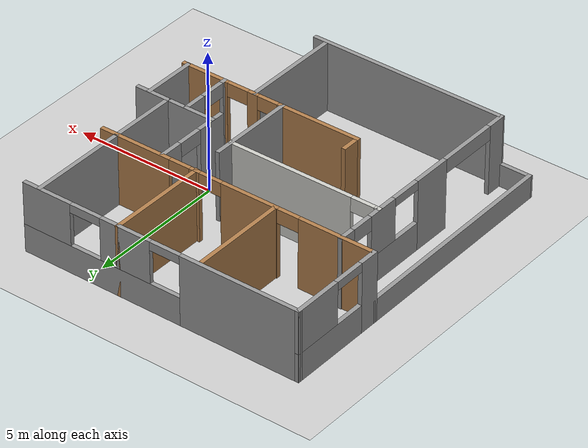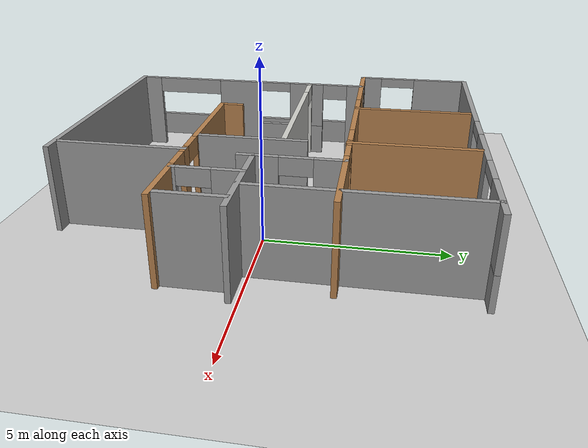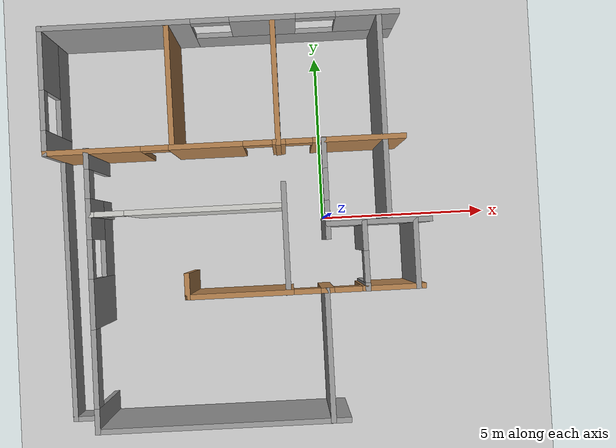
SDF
<sdf version="1.7">
 <world name="default">
  <scene><ambient>0.4 0.4 0.4 1</ambient><background>0.7 0.7 0.7 1</background><shadows>1</shadows></scene>
  <light name="sun" type="directional">
   <pose>0 0 10 0 -0 0</pose>
   <diffuse>0.8 0.8 0.8 1</diffuse>
   <specular>0.2 0.2 0.2 1</specular>
   <attenuation>
    <range>1000</range>
    <constant>0.9</constant>
    <linear>0.01</linear>
    <quadratic>0.001</quadratic>
   </attenuation>
   <direction>-0.5 0.1 -0.9</direction>
   <spot><inner_angle>0</inner_angle><outer_angle>0</outer_angle><falloff>0</falloff></spot>
  </light>
  <model name="ground_plane">
   <static>1</static>
   <link name="link">
    <collision name="collision">
     <geometry><plane><normal>0 0 1</normal><size>100 100</size></plane></geometry>
     <surface><friction><ode><mu>100</mu><mu2>50</mu2></ode></friction></surface>
    </collision>
    <visual name="visual">
     <cast_shadows>0</cast_shadows>
     <geometry><plane><normal>0 0 1</normal><size>100 100</size></plane></geometry>
     <material>
      <script><uri>file://media/materials/scripts/gazebo.material</uri><name>Gazebo/Grey</name></script>
     </material>
    </visual>
   </link>
  </model>
  <physics type="ode">
   <real_time_update_rate>1000</real_time_update_rate>
   <max_step_size>0.001</max_step_size>
   <real_time_factor>1</real_time_factor>
   <ode>
    <solver>
     <type>quick</type>
     <iters>150</iters>
     <precon_iters>0</precon_iters>
     <sor>1.4</sor>
     <use_dynamic_moi_rescaling>1</use_dynamic_moi_rescaling>
    </solver>
    <constraints>
     <cfm>1e-05</cfm>
     <erp>0.2</erp>
     <contact_max_correcting_vel>2000</contact_max_correcting_vel>
     <contact_surface_layer>0.01</contact_surface_layer>
    </constraints>
   </ode>
  </physics>
  <gravity>0 0 -9.8</gravity>
  <magnetic_field>6e-06 2.3e-05 -4.2e-05</magnetic_field>
  <atmosphere type="adiabatic"/>
  <spherical_coordinates>
   <surface_model>EARTH_WGS84</surface_model>
   <latitude_deg>0</latitude_deg>
   <longitude_deg>0</longitude_deg>
   <elevation>0</elevation>
   <heading_deg>0</heading_deg>
  </spherical_coordinates>
  <model name="psr_appartment">
   <pose>-2.46745 -0.010353 0 0 -0 0</pose>
   <link name="Wall_11">
    <pose>-0.304378 5.68028 0 0 -0 0</pose>
    <visual name="Wall_11_Visual_0">
     <pose>-2.95563 0 1.25 0 -0 0</pose>
     <geometry><box><size>4.33874 0.15 2.5</size></box></geometry>
     <material>
      <script><uri>file://media/materials/scripts/gazebo.material</uri><name>Gazebo/Grey</name></script>
      <ambient>1 1 1 1</ambient>
     </material>
     <meta><layer>0</layer></meta>
    </visual>
    <collision name="Wall_11_Collision_0">
     <geometry><box><size>4.33874 0.15 2.5</size></box></geometry>
     <pose>-2.95563 0 1.25 0 -0 0</pose>
    </collision>
    <visual name="Wall_11_Visual_1">
     <pose>2.16937 0 0.5 0 -0 0</pose>
     <geometry><box><size>5.91126 0.15 1</size></box></geometry>
     <material>
      <script><uri>file://media/materials/scripts/gazebo.material</uri><name>Gazebo/Grey</name></script>
      <ambient>1 1 1 1</ambient>
     </material>
     <meta><layer>0</layer></meta>
    </visual>
    <collision name="Wall_11_Collision_1">
     <geometry><box><size>5.91126 0.15 1</size></box></geometry>
     <pose>2.16937 0 0.5 0 -0 0</pose>
    </collision>
    <visual name="Wall_11_Visual_2">
     <pose>1.24874 0 1.75 0 -0 0</pose>
     <geometry><box><size>1.87 0.15 1.5</size></box></geometry>
     <material>
      <script><uri>file://media/materials/scripts/gazebo.material</uri><name>Gazebo/Grey</name></script>
      <ambient>1 1 1 1</ambient>
     </material>
     <meta><layer>0</layer></meta>
    </visual>
    <collision name="Wall_11_Collision_2">
     <geometry><box><size>1.87 0.15 1.5</size></box></geometry>
     <pose>1.24874 0 1.75 0 -0 0</pose>
    </collision>
    <visual name="Wall_11_Visual_3">
     <pose>4.21937 0 1.75 0 -0 0</pose>
     <geometry><box><size>1.81126 0.15 1.5</size></box></geometry>
     <material>
      <script><uri>file://media/materials/scripts/gazebo.material</uri><name>Gazebo/Grey</name></script>
      <ambient>1 1 1 1</ambient>
     </material>
     <meta><layer>0</layer></meta>
    </visual>
    <collision name="Wall_11_Collision_3">
     <geometry><box><size>1.81126 0.15 1.5</size></box></geometry>
     <pose>4.21937 0 1.75 0 -0 0</pose>
    </collision>
    <visual name="Wall_11_Visual_4">
     <pose>-0.236258 0 2.35 0 -0 0</pose>
     <geometry><box><size>1.1 0.15 0.3</size></box></geometry>
     <material>
      <script><uri>file://media/materials/scripts/gazebo.material</uri><name>Gazebo/Grey</name></script>
      <ambient>1 1 1 1</ambient>
     </material>
     <meta><layer>0</layer></meta>
    </visual>
    <collision name="Wall_11_Collision_4">
     <geometry><box><size>1.1 0.15 0.3</size></box></geometry>
     <pose>-0.236258 0 2.35 0 -0 0</pose>
    </collision>
    <visual name="Wall_11_Visual_5">
     <pose>2.74874 0 2.35 0 -0 0</pose>
     <geometry><box><size>1.13 0.15 0.3</size></box></geometry>
     <material>
      <script><uri>file://media/materials/scripts/gazebo.material</uri><name>Gazebo/Grey</name></script>
      <ambient>1 1 1 1</ambient>
     </material>
     <meta><layer>0</layer></meta>
    </visual>
    <collision name="Wall_11_Collision_5">
     <geometry><box><size>1.13 0.15 0.3</size></box></geometry>
     <pose>2.74874 0 2.35 0 -0 0</pose>
    </collision>
   </link>
   <link name="Wall_13">
    <pose>-5.34997 3.91932 0 0 -0 1.5733</pose>
    <visual name="Wall_13_Visual_0">
     <pose>-1.47102 0 1.25 0 -0 0</pose>
     <geometry><box><size>0.73014 0.15 2.5</size></box></geometry>
     <material>
      <script><uri>file://media/materials/scripts/gazebo.material</uri><name>Gazebo/Grey</name></script>
      <ambient>1 1 1 1</ambient>
     </material>
     <meta><layer>0</layer></meta>
    </visual>
    <collision name="Wall_13_Collision_0">
     <geometry><box><size>0.73014 0.15 2.5</size></box></geometry>
     <pose>-1.47102 0 1.25 0 -0 0</pose>
    </collision>
    <visual name="Wall_13_Visual_1">
     <pose>0.36507 0 0.5 0 -0 0</pose>
     <geometry><box><size>2.94204 0.15 1</size></box></geometry>
     <material>
      <script><uri>file://media/materials/scripts/gazebo.material</uri><name>Gazebo/Grey</name></script>
      <ambient>1 1 1 1</ambient>
     </material>
     <meta><layer>0</layer></meta>
    </visual>
    <collision name="Wall_13_Collision_1">
     <geometry><box><size>2.94204 0.15 1</size></box></geometry>
     <pose>0.36507 0 0.5 0 -0 0</pose>
    </collision>
    <visual name="Wall_13_Visual_2">
     <pose>0.93507 0 1.75 0 -0 0</pose>
     <geometry><box><size>1.80204 0.15 1.5</size></box></geometry>
     <material>
      <script><uri>file://media/materials/scripts/gazebo.material</uri><name>Gazebo/Grey</name></script>
      <ambient>1 1 1 1</ambient>
     </material>
     <meta><layer>0</layer></meta>
    </visual>
    <collision name="Wall_13_Collision_2">
     <geometry><box><size>1.80204 0.15 1.5</size></box></geometry>
     <pose>0.93507 0 1.75 0 -0 0</pose>
    </collision>
    <visual name="Wall_13_Visual_3">
     <pose>-0.535949 0 2.35 0 -0 0</pose>
     <geometry><box><size>1.14 0.15 0.3</size></box></geometry>
     <material>
      <script><uri>file://media/materials/scripts/gazebo.material</uri><name>Gazebo/Grey</name></script>
      <ambient>1 1 1 1</ambient>
     </material>
     <meta><layer>0</layer></meta>
    </visual>
    <collision name="Wall_13_Collision_3">
     <geometry><box><size>1.14 0.15 0.3</size></box></geometry>
     <pose>-0.535949 0 2.35 0 -0 0</pose>
    </collision>
   </link>
   <link name="Wall_15">
    <collision name="Wall_15_Collision">
     <geometry><box><size>3.49149 0.15 2.5</size></box></geometry>
     <pose>0 0 1.25 0 -0 0</pose>
    </collision>
    <visual name="Wall_15_Visual">
     <pose>0 0 1.25 0 -0 0</pose>
     <geometry><box><size>3.49149 0.15 2.5</size></box></geometry>
     <material>
      <script><uri>file://media/materials/scripts/gazebo.material</uri><name>Gazebo/Wood</name></script>
      <ambient>1 1 1 1</ambient>
     </material>
     <meta><layer>0</layer></meta>
    </visual>
    <pose>-1.77272 3.85299 0 0 -0 1.57535</pose>
   </link>
   <link name="Wall_17">
    <collision name="Wall_17_Collision">
     <geometry><box><size>3.69364 0.15 2.5</size></box></geometry>
     <pose>0 0 1.25 0 -0 0</pose>
    </collision>
    <visual name="Wall_17_Visual">
     <pose>0 0 1.25 0 -0 0</pose>
     <geometry><box><size>3.69364 0.15 2.5</size></box></geometry>
     <material>
      <script><uri>file://media/materials/scripts/gazebo.material</uri><name>Gazebo/Wood</name></script>
      <ambient>1 1 1 1</ambient>
     </material>
     <meta><layer>0</layer></meta>
    </visual>
    <pose>1.2158 3.90846 0 0 -0 1.5708</pose>
   </link>
   <link name="Wall_19">
    <pose>2.49334 0.790666 0 0 -0 -1.5708</pose>
    <visual name="Wall_19_Visual_0">
     <pose>-1.00243 0 1.25 0 -0 0</pose>
     <geometry><box><size>0.867502 0.15 2.5</size></box></geometry>
     <material>
      <script><uri>file://media/materials/scripts/gazebo.material</uri><name>Gazebo/Grey</name></script>
      <ambient>1 1 1 1</ambient>
     </material>
     <meta><layer>0</layer></meta>
    </visual>
    <collision name="Wall_19_Collision_0">
     <geometry><box><size>0.867502 0.15 2.5</size></box></geometry>
     <pose>-1.00243 0 1.25 0 -0 0</pose>
    </collision>
    <visual name="Wall_19_Visual_1">
     <pose>0.883751 0 1.25 0 -0 0</pose>
     <geometry><box><size>1.10486 0.15 2.5</size></box></geometry>
     <material>
      <script><uri>file://media/materials/scripts/gazebo.material</uri><name>Gazebo/Grey</name></script>
      <ambient>1 1 1 1</ambient>
     </material>
     <meta><layer>0</layer></meta>
    </visual>
    <collision name="Wall_19_Collision_1">
     <geometry><box><size>1.10486 0.15 2.5</size></box></geometry>
     <pose>0.883751 0 1.25 0 -0 0</pose>
    </collision>
    <visual name="Wall_19_Visual_2">
     <pose>-0.118681 0 2.25 0 -0 0</pose>
     <geometry><box><size>0.9 0.15 0.5</size></box></geometry>
     <material>
      <script><uri>file://media/materials/scripts/gazebo.material</uri><name>Gazebo/Grey</name></script>
      <ambient>1 1 1 1</ambient>
     </material>
     <meta><layer>0</layer></meta>
    </visual>
    <collision name="Wall_19_Collision_2">
     <geometry><box><size>0.9 0.15 0.5</size></box></geometry>
     <pose>-0.118681 0 2.25 0 -0 0</pose>
    </collision>
   </link>
   <link name="Wall_2">
    <collision name="Wall_2_Collision">
     <geometry><box><size>7.14201 0.15 2.5</size></box></geometry>
     <pose>0 0 1.25 0 -0 0</pose>
    </collision>
    <visual name="Wall_2_Visual">
     <pose>0 0 1.25 0 -0 0</pose>
     <geometry><box><size>7.14201 0.15 2.5</size></box></geometry>
     <material>
      <script><uri>file://media/materials/scripts/gazebo.material</uri><name>Gazebo/Grey</name></script>
      <ambient>1 1 1 1</ambient>
     </material>
     <meta><layer>0</layer></meta>
    </visual>
    <pose>-0.692508 -5.67455 0 0 -0 -0.00169</pose>
   </link>
   <link name="Wall_21">
    <collision name="Wall_21_Collision">
     <geometry><box><size>3 0.15 2.5</size></box></geometry>
     <pose>0 0 1.25 0 -0 0</pose>
    </collision>
    <visual name="Wall_21_Visual">
     <pose>0 0 1.25 0 -0 0</pose>
     <geometry><box><size>3 0.15 2.5</size></box></geometry>
     <material>
      <script><uri>file://media/materials/scripts/gazebo.material</uri><name>Gazebo/Grey</name></script>
      <ambient>1 1 1 1</ambient>
     </material>
     <meta><layer>0</layer></meta>
    </visual>
    <pose>3.92957 -0.207491 0 0 -0 3.14159</pose>
   </link>
   <link name="Wall_24">
    <pose>1.7781 -2.06515 0 0 -0 0</pose>
    <visual name="Wall_24_Visual_0">
     <pose>-1.84862 0 1.25 0 -0 0</pose>
     <geometry><box><size>3.05276 0.15 2.5</size></box></geometry>
     <material>
      <script><uri>file://media/materials/scripts/gazebo.material</uri><name>Gazebo/Wood</name></script>
      <ambient>1 1 1 1</ambient>
     </material>
     <meta><layer>0</layer></meta>
    </visual>
    <collision name="Wall_24_Collision_0">
     <geometry><box><size>3.05276 0.15 2.5</size></box></geometry>
     <pose>-1.84862 0 1.25 0 -0 0</pose>
    </collision>
    <visual name="Wall_24_Visual_1">
     <pose>0.622094 0 1.25 0 -0 0</pose>
     <geometry><box><size>0.377977 0.15 2.5</size></box></geometry>
     <material>
      <script><uri>file://media/materials/scripts/gazebo.material</uri><name>Gazebo/Wood</name></script>
      <ambient>1 1 1 1</ambient>
     </material>
     <meta><layer>0</layer></meta>
    </visual>
    <collision name="Wall_24_Collision_1">
     <geometry><box><size>0.377977 0.15 2.5</size></box></geometry>
     <pose>0.622094 0 1.25 0 -0 0</pose>
    </collision>
    <visual name="Wall_24_Visual_2">
     <pose>2.48387 0 1.25 0 -0 0</pose>
     <geometry><box><size>1.78227 0.15 2.5</size></box></geometry>
     <material>
      <script><uri>file://media/materials/scripts/gazebo.material</uri><name>Gazebo/Wood</name></script>
      <ambient>1 1 1 1</ambient>
     </material>
     <meta><layer>0</layer></meta>
    </visual>
    <collision name="Wall_24_Collision_2">
     <geometry><box><size>1.78227 0.15 2.5</size></box></geometry>
     <pose>2.48387 0 1.25 0 -0 0</pose>
    </collision>
    <visual name="Wall_24_Visual_3">
     <pose>0.055432 0 2.25 0 -0 0</pose>
     <geometry><box><size>0.755346 0.15 0.5</size></box></geometry>
     <material>
      <script><uri>file://media/materials/scripts/gazebo.material</uri><name>Gazebo/Wood</name></script>
      <ambient>1 1 1 1</ambient>
     </material>
     <meta><layer>0</layer></meta>
    </visual>
    <collision name="Wall_24_Collision_3">
     <geometry><box><size>0.755346 0.15 0.5</size></box></geometry>
     <pose>0.055432 0 2.25 0 -0 0</pose>
    </collision>
    <visual name="Wall_24_Visual_4">
     <pose>1.20191 0 2.25 0 -0 0</pose>
     <geometry><box><size>0.781647 0.15 0.5</size></box></geometry>
     <material>
      <script><uri>file://media/materials/scripts/gazebo.material</uri><name>Gazebo/Wood</name></script>
      <ambient>1 1 1 1</ambient>
     </material>
     <meta><layer>0</layer></meta>
    </visual>
    <collision name="Wall_24_Collision_4">
     <geometry><box><size>0.781647 0.15 0.5</size></box></geometry>
     <pose>1.20191 0 2.25 0 -0 0</pose>
    </collision>
   </link>
   <link name="Wall_27">
    <collision name="Wall_27_Collision">
     <geometry><box><size>2 0.15 2.5</size></box></geometry>
     <pose>0 0 1.25 0 -0 0</pose>
    </collision>
    <visual name="Wall_27_Visual">
     <pose>0 0 1.25 0 -0 0</pose>
     <geometry><box><size>2 0.15 2.5</size></box></geometry>
     <material>
      <script><uri>file://media/materials/scripts/gazebo.material</uri><name>Gazebo/Grey</name></script>
      <ambient>1 1 1 1</ambient>
     </material>
     <meta><layer>0</layer></meta>
    </visual>
    <pose>4.94512 -1.14015 0 0 -0 1.5708</pose>
   </link>
   <link name="Wall_29">
    <pose>3.52344 -1.14601 0 0 -0 -1.5636</pose>
    <visual name="Wall_29_Visual_0">
     <pose>-0.566193 0 1.25 0 -0 0</pose>
     <geometry><box><size>0.855937 0.15 2.5</size></box></geometry>
     <material>
      <script><uri>file://media/materials/scripts/gazebo.material</uri><name>Gazebo/Grey</name></script>
      <ambient>1 1 1 1</ambient>
     </material>
     <meta><layer>0</layer></meta>
    </visual>
    <collision name="Wall_29_Collision_0">
     <geometry><box><size>0.855937 0.15 2.5</size></box></geometry>
     <pose>-0.566193 0 1.25 0 -0 0</pose>
    </collision>
    <visual name="Wall_29_Visual_1">
     <pose>0.877969 0 1.25 0 -0 0</pose>
     <geometry><box><size>0.232385 0.15 2.5</size></box></geometry>
     <material>
      <script><uri>file://media/materials/scripts/gazebo.material</uri><name>Gazebo/Grey</name></script>
      <ambient>1 1 1 1</ambient>
     </material>
     <meta><layer>0</layer></meta>
    </visual>
    <collision name="Wall_29_Collision_1">
     <geometry><box><size>0.232385 0.15 2.5</size></box></geometry>
     <pose>0.877969 0 1.25 0 -0 0</pose>
    </collision>
    <visual name="Wall_29_Visual_2">
     <pose>0.311776 0 2.25 0 -0 0</pose>
     <geometry><box><size>0.9 0.15 0.5</size></box></geometry>
     <material>
      <script><uri>file://media/materials/scripts/gazebo.material</uri><name>Gazebo/Grey</name></script>
      <ambient>1 1 1 1</ambient>
     </material>
     <meta><layer>0</layer></meta>
    </visual>
    <collision name="Wall_29_Collision_2">
     <geometry><box><size>0.9 0.15 0.5</size></box></geometry>
     <pose>0.311776 0 2.25 0 -0 0</pose>
    </collision>
   </link>
   <link name="Wall_31">
    <collision name="Wall_31_Collision">
     <geometry><box><size>3.19175 0.15 2.5</size></box></geometry>
     <pose>0 0 1.25 0 -0 0</pose>
    </collision>
    <visual name="Wall_31_Visual">
     <pose>0 0 1.25 0 -0 0</pose>
     <geometry><box><size>3.19175 0.15 2.5</size></box></geometry>
     <material>
      <script><uri>file://media/materials/scripts/gazebo.material</uri><name>Gazebo/Grey</name></script>
      <ambient>1 1 1 1</ambient>
     </material>
     <meta><layer>0</layer></meta>
    </visual>
    <pose>1.30267 -0.550631 0 0 -0 1.5708</pose>
   </link>
   <link name="Wall_34">
    <pose>-1.44379 0.379575 0 0 -0 0</pose>
    <visual name="Wall_34_Visual_0">
     <pose>-2.70164 0 1.25 0 -0 0</pose>
     <geometry><box><size>0.216714 0.15 2.5</size></box></geometry>
     <material>
      <script><uri>file://media/materials/scripts/gazebo.material</uri><name>Gazebo/CeilingTiled</name></script>
      <ambient>1 1 1 1</ambient>
     </material>
     <meta><layer>0</layer></meta>
    </visual>
    <collision name="Wall_34_Collision_0">
     <geometry><box><size>0.216714 0.15 2.5</size></box></geometry>
     <pose>-2.70164 0 1.25 0 -0 0</pose>
    </collision>
    <visual name="Wall_34_Visual_1">
     <pose>0.528187 0 1.25 0 -0 0</pose>
     <geometry><box><size>4.56363 0.15 2.5</size></box></geometry>
     <material>
      <script><uri>file://media/materials/scripts/gazebo.material</uri><name>Gazebo/CeilingTiled</name></script>
      <ambient>1 1 1 1</ambient>
     </material>
     <meta><layer>0</layer></meta>
    </visual>
    <collision name="Wall_34_Collision_1">
     <geometry><box><size>4.56363 0.15 2.5</size></box></geometry>
     <pose>0.528187 0 1.25 0 -0 0</pose>
    </collision>
    <visual name="Wall_34_Visual_2">
     <pose>-2.17346 0 2.25 0 -0 0</pose>
     <geometry><box><size>0.839659 0.15 0.5</size></box></geometry>
     <material>
      <script><uri>file://media/materials/scripts/gazebo.material</uri><name>Gazebo/CeilingTiled</name></script>
      <ambient>1 1 1 1</ambient>
     </material>
     <meta><layer>0</layer></meta>
    </visual>
    <collision name="Wall_34_Collision_2">
     <geometry><box><size>0.839659 0.15 0.5</size></box></geometry>
     <pose>-2.17346 0 2.25 0 -0 0</pose>
    </collision>
   </link>
   <link name="Wall_36">
    <collision name="Wall_36_Collision">
     <geometry><box><size>0.75 0.15 2.5</size></box></geometry>
     <pose>0 0 1.25 0 -0 0</pose>
    </collision>
    <visual name="Wall_36_Visual">
     <pose>0 0 1.25 0 -0 0</pose>
     <geometry><box><size>0.75 0.15 2.5</size></box></geometry>
     <material>
      <script><uri>file://media/materials/scripts/gazebo.material</uri><name>Gazebo/Wood</name></script>
      <ambient>1 1 1 1</ambient>
     </material>
     <meta><layer>0</layer></meta>
    </visual>
    <pose>-1.5219 -1.76515 0 0 -0 1.5708</pose>
   </link>
   <link name="Wall_39">
    <collision name="Wall_39_Collision">
     <geometry><box><size>3.75 0.15 2.5</size></box></geometry>
     <pose>0 0 1.25 0 -0 0</pose>
    </collision>
    <visual name="Wall_39_Visual">
     <pose>0 0 1.25 0 -0 0</pose>
     <geometry><box><size>3.75 0.15 2.5</size></box></geometry>
     <material>
      <script><uri>file://media/materials/scripts/gazebo.material</uri><name>Gazebo/Grey</name></script>
      <ambient>1 1 1 1</ambient>
     </material>
     <meta><layer>0</layer></meta>
    </visual>
    <pose>2.37648 -3.8696 0 0 -0 -1.5708</pose>
   </link>
   <link name="Wall_4">
    <pose>-4.18851 -1.7438 0 0 -0 1.57079</pose>
    <visual name="Wall_4_Visual_0">
     <pose>-3.64118 0 1.25 0 -0 0</pose>
     <geometry><box><size>0.717646 0.15 2.5</size></box></geometry>
     <material>
      <script><uri>file://media/materials/scripts/gazebo.material</uri><name>Gazebo/Grey</name></script>
      <ambient>1 1 1 1</ambient>
     </material>
     <meta><layer>0</layer></meta>
    </visual>
    <collision name="Wall_4_Collision_0">
     <geometry><box><size>0.717646 0.15 2.5</size></box></geometry>
     <pose>-3.64118 0 1.25 0 -0 0</pose>
    </collision>
    <visual name="Wall_4_Visual_1">
     <pose>-0.38098 0 1.25 0 -0 0</pose>
     <geometry><box><size>1.41075 0.15 2.5</size></box></geometry>
     <material>
      <script><uri>file://media/materials/scripts/gazebo.material</uri><name>Gazebo/Grey</name></script>
      <ambient>1 1 1 1</ambient>
     </material>
     <meta><layer>0</layer></meta>
    </visual>
    <collision name="Wall_4_Collision_1">
     <geometry><box><size>1.41075 0.15 2.5</size></box></geometry>
     <pose>-0.38098 0 1.25 0 -0 0</pose>
    </collision>
    <visual name="Wall_4_Visual_2">
     <pose>3.70228 0 1.25 0 -0 0</pose>
     <geometry><box><size>0.59543 0.15 2.5</size></box></geometry>
     <material>
      <script><uri>file://media/materials/scripts/gazebo.material</uri><name>Gazebo/Grey</name></script>
      <ambient>1 1 1 1</ambient>
     </material>
     <meta><layer>0</layer></meta>
    </visual>
    <collision name="Wall_4_Collision_2">
     <geometry><box><size>0.59543 0.15 2.5</size></box></geometry>
     <pose>3.70228 0 1.25 0 -0 0</pose>
    </collision>
    <visual name="Wall_4_Visual_3">
     <pose>1.45361 0 0.5 0 -0 0</pose>
     <geometry><box><size>2.25844 0.15 1</size></box></geometry>
     <material>
      <script><uri>file://media/materials/scripts/gazebo.material</uri><name>Gazebo/Grey</name></script>
      <ambient>1 1 1 1</ambient>
     </material>
     <meta><layer>0</layer></meta>
    </visual>
    <collision name="Wall_4_Collision_3">
     <geometry><box><size>2.25844 0.15 1</size></box></geometry>
     <pose>1.45361 0 0.5 0 -0 0</pose>
    </collision>
    <visual name="Wall_4_Visual_4">
     <pose>2.00561 0 1.75 0 -0 0</pose>
     <geometry><box><size>1.15444 0.15 1.5</size></box></geometry>
     <material>
      <script><uri>file://media/materials/scripts/gazebo.material</uri><name>Gazebo/Grey</name></script>
      <ambient>1 1 1 1</ambient>
     </material>
     <meta><layer>0</layer></meta>
    </visual>
    <collision name="Wall_4_Collision_4">
     <geometry><box><size>1.15444 0.15 1.5</size></box></geometry>
     <pose>2.00561 0 1.75 0 -0 0</pose>
    </collision>
    <visual name="Wall_4_Visual_5">
     <pose>-2.18435 0 2.25 0 -0 0</pose>
     <geometry><box><size>2.196 0.15 0.5</size></box></geometry>
     <material>
      <script><uri>file://media/materials/scripts/gazebo.material</uri><name>Gazebo/Grey</name></script>
      <ambient>1 1 1 1</ambient>
     </material>
     <meta><layer>0</layer></meta>
    </visual>
    <collision name="Wall_4_Collision_5">
     <geometry><box><size>2.196 0.15 0.5</size></box></geometry>
     <pose>-2.18435 0 2.25 0 -0 0</pose>
    </collision>
    <visual name="Wall_4_Visual_6">
     <pose>2.9937 0 2.25 0 -0 0</pose>
     <geometry><box><size>0.821739 0.15 0.5</size></box></geometry>
     <material>
      <script><uri>file://media/materials/scripts/gazebo.material</uri><name>Gazebo/Grey</name></script>
      <ambient>1 1 1 1</ambient>
     </material>
     <meta><layer>0</layer></meta>
    </visual>
    <collision name="Wall_4_Collision_6">
     <geometry><box><size>0.821739 0.15 0.5</size></box></geometry>
     <pose>2.9937 0 2.25 0 -0 0</pose>
    </collision>
    <visual name="Wall_4_Visual_7">
     <pose>0.876393 0 2.35 0 -0 0</pose>
     <geometry><box><size>1.104 0.15 0.3</size></box></geometry>
     <material>
      <script><uri>file://media/materials/scripts/gazebo.material</uri><name>Gazebo/Grey</name></script>
      <ambient>1 1 1 1</ambient>
     </material>
     <meta><layer>0</layer></meta>
    </visual>
    <collision name="Wall_4_Collision_7">
     <geometry><box><size>1.104 0.15 0.3</size></box></geometry>
     <pose>0.876393 0 2.35 0 -0 0</pose>
    </collision>
   </link>
   <link name="Wall_41">
    <collision name="Wall_41_Collision">
     <geometry><box><size>1.25 0.15 0.8</size></box></geometry>
     <pose>0 0 0.4 0 -0 0</pose>
    </collision>
    <visual name="Wall_41_Visual">
     <pose>0 0 0.4 0 -0 0</pose>
     <geometry><box><size>1.25 0.15 0.8</size></box></geometry>
     <material>
      <script><uri>file://media/materials/scripts/gazebo.material</uri><name>Gazebo/Grey</name></script>
      <ambient>0.368627 0.384314 0.352941 1</ambient>
     </material>
     <meta><layer>0</layer></meta>
    </visual>
    <pose>-4.73855 -5.66865 0 0 -0 3.14159</pose>
   </link>
   <link name="Wall_42">
    <collision name="Wall_42_Collision">
     <geometry><box><size>7.97728 0.15 0.8</size></box></geometry>
     <pose>0 0 0.4 0 -0 0</pose>
    </collision>
    <visual name="Wall_42_Visual">
     <pose>0 0 0.4 0 -0 0</pose>
     <geometry><box><size>7.97728 0.15 0.8</size></box></geometry>
     <material>
      <script><uri>file://media/materials/scripts/gazebo.material</uri><name>Gazebo/Grey</name></script>
      <ambient>0.368627 0.384314 0.352941 1</ambient>
     </material>
     <meta><layer>0</layer></meta>
    </visual>
    <pose>-5.31705 -1.75515 0 0 -0 1.57808</pose>
   </link>
   <link name="Wall_6">
    <pose>-0.295353 2.15823 0 0 -0 -2.4e-05</pose>
    <visual name="Wall_6_Visual_0">
     <pose>-3.73944 0 1.25 0 -0 0</pose>
     <geometry><box><size>2.77111 0.15 2.5</size></box></geometry>
     <material>
      <script><uri>file://media/materials/scripts/gazebo.material</uri><name>Gazebo/Wood</name></script>
      <ambient>1 1 1 1</ambient>
     </material>
     <meta><layer>0</layer></meta>
    </visual>
    <collision name="Wall_6_Collision_0">
     <geometry><box><size>2.77111 0.15 2.5</size></box></geometry>
     <pose>-3.73944 0 1.25 0 -0 0</pose>
    </collision>
    <visual name="Wall_6_Visual_1">
     <pose>-0.52611 0 1.25 0 -0 0</pose>
     <geometry><box><size>2.09692 0.15 2.5</size></box></geometry>
     <material>
      <script><uri>file://media/materials/scripts/gazebo.material</uri><name>Gazebo/Wood</name></script>
      <ambient>1 1 1 1</ambient>
     </material>
     <meta><layer>0</layer></meta>
    </visual>
    <collision name="Wall_6_Collision_1">
     <geometry><box><size>2.09692 0.15 2.5</size></box></geometry>
     <pose>-0.52611 0 1.25 0 -0 0</pose>
    </collision>
    <visual name="Wall_6_Visual_2">
     <pose>1.53051 0 1.25 0 -0 0</pose>
     <geometry><box><size>0.377215 0.15 2.5</size></box></geometry>
     <material>
      <script><uri>file://media/materials/scripts/gazebo.material</uri><name>Gazebo/Wood</name></script>
      <ambient>1 1 1 1</ambient>
     </material>
     <meta><layer>0</layer></meta>
    </visual>
    <collision name="Wall_6_Collision_2">
     <geometry><box><size>0.377215 0.15 2.5</size></box></geometry>
     <pose>1.53051 0 1.25 0 -0 0</pose>
    </collision>
    <visual name="Wall_6_Visual_3">
     <pose>3.80166 0 1.25 0 -0 0</pose>
     <geometry><box><size>2.64668 0.15 2.5</size></box></geometry>
     <material>
      <script><uri>file://media/materials/scripts/gazebo.material</uri><name>Gazebo/Wood</name></script>
      <ambient>1 1 1 1</ambient>
     </material>
     <meta><layer>0</layer></meta>
    </visual>
    <collision name="Wall_6_Collision_3">
     <geometry><box><size>2.64668 0.15 2.5</size></box></geometry>
     <pose>3.80166 0 1.25 0 -0 0</pose>
    </collision>
    <visual name="Wall_6_Visual_4">
     <pose>-1.96423 0 2.25 0 -0 0</pose>
     <geometry><box><size>0.779319 0.15 0.5</size></box></geometry>
     <material>
      <script><uri>file://media/materials/scripts/gazebo.material</uri><name>Gazebo/Wood</name></script>
      <ambient>1 1 1 1</ambient>
     </material>
     <meta><layer>0</layer></meta>
    </visual>
    <collision name="Wall_6_Collision_4">
     <geometry><box><size>0.779319 0.15 0.5</size></box></geometry>
     <pose>-1.96423 0 2.25 0 -0 0</pose>
    </collision>
    <visual name="Wall_6_Visual_5">
     <pose>0.932124 0 2.25 0 -0 0</pose>
     <geometry><box><size>0.819546 0.15 0.5</size></box></geometry>
     <material>
      <script><uri>file://media/materials/scripts/gazebo.material</uri><name>Gazebo/Wood</name></script>
      <ambient>1 1 1 1</ambient>
     </material>
     <meta><layer>0</layer></meta>
    </visual>
    <collision name="Wall_6_Collision_5">
     <geometry><box><size>0.819546 0.15 0.5</size></box></geometry>
     <pose>0.932124 0 2.25 0 -0 0</pose>
    </collision>
    <visual name="Wall_6_Visual_6">
     <pose>2.09872 0 2.25 0 -0 0</pose>
     <geometry><box><size>0.759206 0.15 0.5</size></box></geometry>
     <material>
      <script><uri>file://media/materials/scripts/gazebo.material</uri><name>Gazebo/Wood</name></script>
      <ambient>1 1 1 1</ambient>
     </material>
     <meta><layer>0</layer></meta>
    </visual>
    <collision name="Wall_6_Collision_6">
     <geometry><box><size>0.759206 0.15 0.5</size></box></geometry>
     <pose>2.09872 0 2.25 0 -0 0</pose>
    </collision>
   </link>
   <link name="Wall_9">
    <collision name="Wall_9_Collision">
     <geometry><box><size>6 0.15 2.5</size></box></geometry>
     <pose>0 0 1.25 0 -0 0</pose>
    </collision>
    <visual name="Wall_9_Visual">
     <pose>0 0 1.25 0 -0 0</pose>
     <geometry><box><size>6 0.15 2.5</size></box></geometry>
     <material>
      <script><uri>file://media/materials/scripts/gazebo.material</uri><name>Gazebo/Grey</name></script>
      <ambient>1 1 1 1</ambient>
     </material>
     <meta><layer>0</layer></meta>
    </visual>
    <pose>4.22713 2.74007 0 0 -0 -1.5708</pose>
   </link>
   <static>1</static>
  </model>
 </world>
</sdf>
